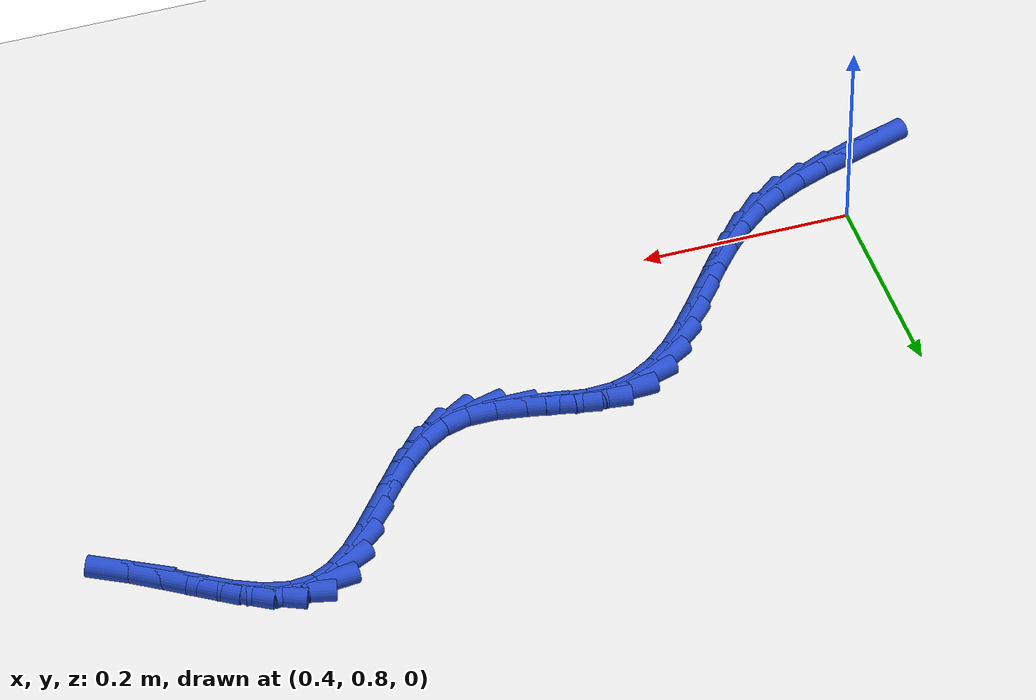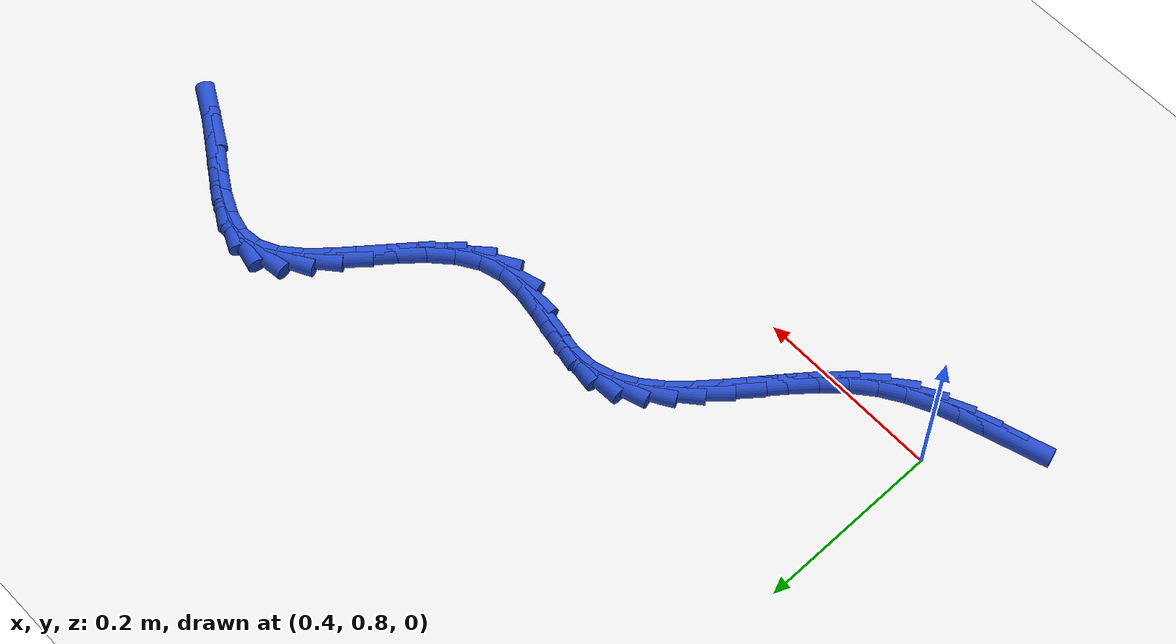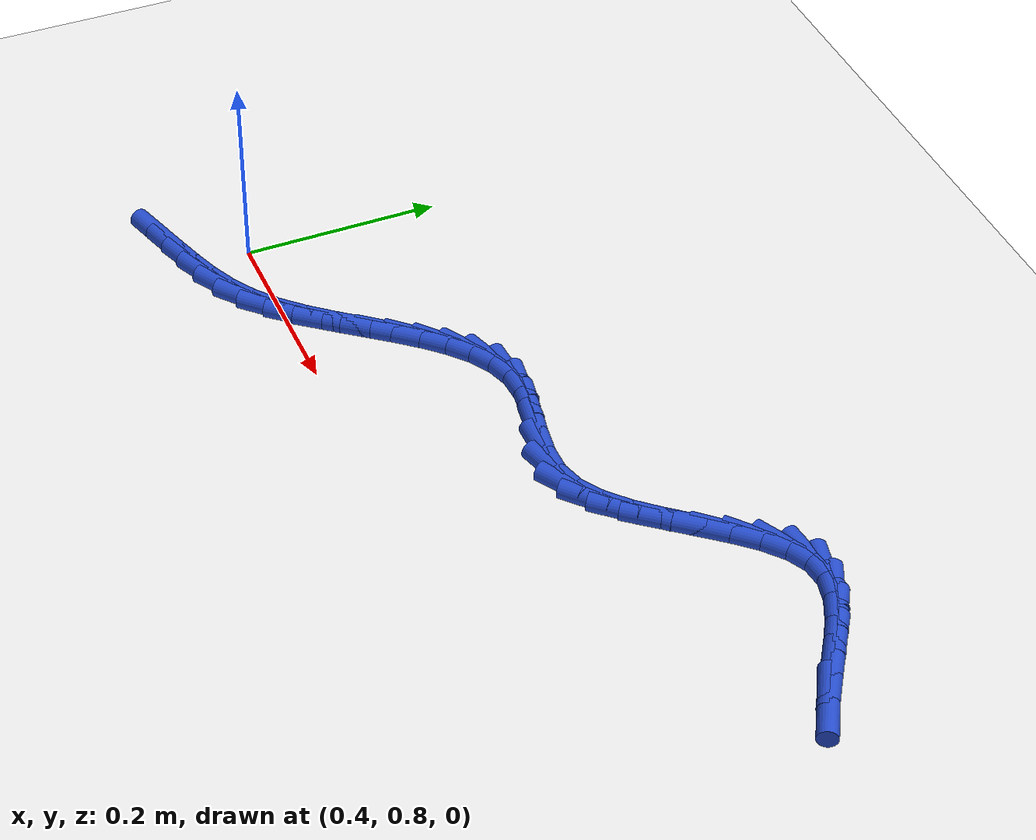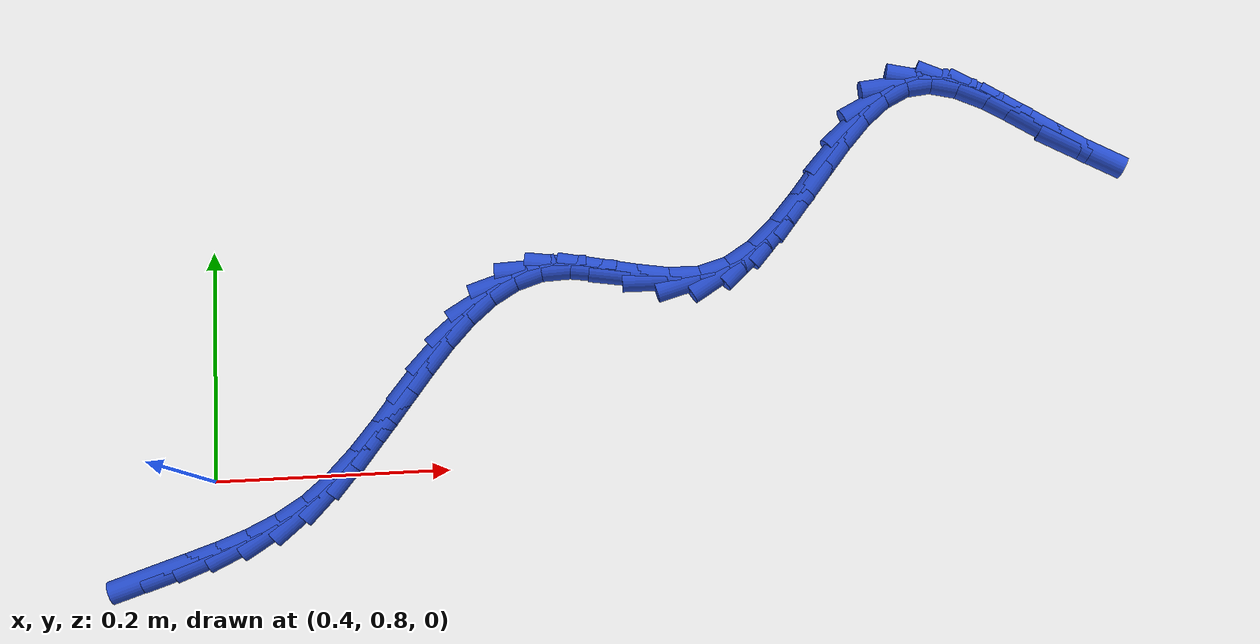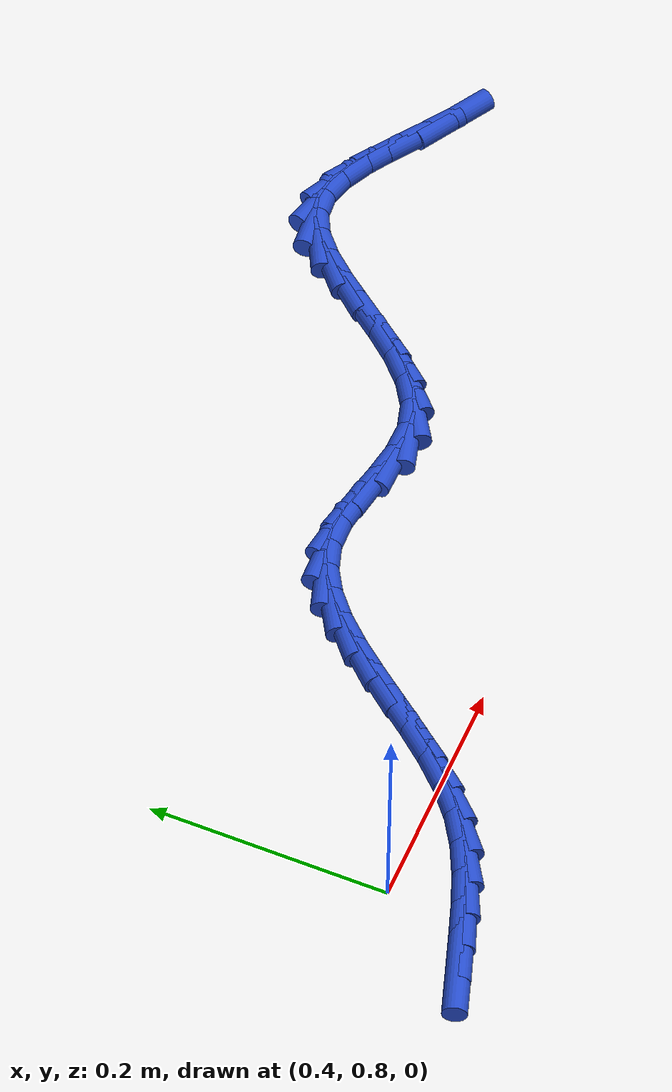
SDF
<sdf version="1.6">
 <world name="default">
  <model name="ground_plane">
   <static>1</static>
   <link name="link">
    <collision name="collision">
     <geometry><plane><normal>0 0 1</normal><size>100 100</size></plane></geometry>
     <surface><friction><ode><mu>100</mu><mu2>50</mu2></ode></friction></surface>
    </collision>
    <visual name="visual">
     <cast_shadows>0</cast_shadows>
     <geometry><plane><normal>0 0 1</normal><size>100 100</size></plane></geometry>
     <material>
      <script><uri>file://media/materials/scripts/gazebo.material</uri><name>Gazebo/WhiteGlow</name></script>
     </material>
    </visual>
   </link>
  </model>
  <model name="line">
   <link name="link_30">
    <pose>0.3522405422709018 0.7227646637422352 0.01 0 1.57 0.3036182680935461</pose>
    <collision name="collision">
     <geometry><cylinder><radius>0.01</radius><length>0.08</length></cylinder></geometry>
    </collision>
    <visual name="visual">
     <material>
      <script><name>Gazebo/Blue</name><uri>file://media/materials/scripts/gazebo.material</uri></script>
     </material>
     <geometry><cylinder><radius>0.01</radius><length>0.08</length></cylinder></geometry>
    </visual>
   </link>
   <link name="link_31">
    <pose>0.37883512808935776 0.7310968859165338 0.01 0 1.57 0.312417065026623</pose>
    <collision name="collision">
     <geometry><cylinder><radius>0.01</radius><length>0.08</length></cylinder></geometry>
    </collision>
    <visual name="visual">
     <material>
      <script><name>Gazebo/Blue</name><uri>file://media/materials/scripts/gazebo.material</uri></script>
     </material>
     <geometry><cylinder><radius>0.01</radius><length>0.08</length></cylinder></geometry>
    </visual>
   </link>
   <link name="link_32">
    <pose>0.4054707446708365 0.7397000476966767 0.01 0 1.57 0.35656774255827295</pose>
    <collision name="collision">
     <geometry><cylinder><radius>0.01</radius><length>0.08</length></cylinder></geometry>
    </collision>
    <visual name="visual">
     <material>
      <script><name>Gazebo/Blue</name><uri>file://media/materials/scripts/gazebo.material</uri></script>
     </material>
     <geometry><cylinder><radius>0.01</radius><length>0.08</length></cylinder></geometry>
    </visual>
   </link>
   <link name="link_33">
    <pose>0.4316800293985362 0.7494627272744537 0.01 0 1.57 0.43652444065668683</pose>
    <collision name="collision">
     <geometry><cylinder><radius>0.01</radius><length>0.08</length></cylinder></geometry>
    </collision>
    <visual name="visual">
     <material>
      <script><name>Gazebo/Blue</name><uri>file://media/materials/scripts/gazebo.material</uri></script>
     </material>
     <geometry><cylinder><radius>0.01</radius><length>0.08</length></cylinder></geometry>
    </visual>
   </link>
   <link name="link_34">
    <pose>0.4569956196556561 0.761273502841655 0.01 0 1.57 0.5518426479296237</pose>
    <collision name="collision">
     <geometry><cylinder><radius>0.01</radius><length>0.08</length></cylinder></geometry>
    </collision>
    <visual name="visual">
     <material>
      <script><name>Gazebo/Blue</name><uri>file://media/materials/scripts/gazebo.material</uri></script>
     </material>
     <geometry><cylinder><radius>0.01</radius><length>0.08</length></cylinder></geometry>
    </visual>
   </link>
   <link name="link_35">
    <pose>0.48095015282539455 0.7760209525900705 0.01 0 1.57 0.6901159250711582</pose>
    <collision name="collision">
     <geometry><cylinder><radius>0.01</radius><length>0.08</length></cylinder></geometry>
    </collision>
    <visual name="visual">
     <material>
      <script><name>Gazebo/Blue</name><uri>file://media/materials/scripts/gazebo.material</uri></script>
     </material>
     <geometry><cylinder><radius>0.01</radius><length>0.08</length></cylinder></geometry>
    </visual>
   </link>
   <link name="link_36">
    <pose>0.5031778902909975 0.7943706392566041 0.01 0 1.57 0.8005125224158287</pose>
    <collision name="collision">
     <geometry><cylinder><radius>0.01</radius><length>0.08</length></cylinder></geometry>
    </collision>
    <visual name="visual">
     <material>
      <script><name>Gazebo/Blue</name><uri>file://media/materials/scripts/gazebo.material</uri></script>
     </material>
     <geometry><cylinder><radius>0.01</radius><length>0.08</length></cylinder></geometry>
    </visual>
   </link>
   <link name="link_37">
    <pose>0.523891112528178 0.8157196536544086 0.01 0 1.57 0.8710023529055432</pose>
    <collision name="collision">
     <geometry><cylinder><radius>0.01</radius><length>0.08</length></cylinder></geometry>
    </collision>
    <visual name="visual">
     <material>
      <script><name>Gazebo/Blue</name><uri>file://media/materials/scripts/gazebo.material</uri></script>
     </material>
     <geometry><cylinder><radius>0.01</radius><length>0.08</length></cylinder></geometry>
    </visual>
   </link>
   <link name="link_38">
    <pose>0.5435061822806708 0.8390172248728707 0.01 0 1.57 0.9067907898642227</pose>
    <collision name="collision">
     <geometry><cylinder><radius>0.01</radius><length>0.08</length></cylinder></geometry>
    </collision>
    <visual name="visual">
     <material>
      <script><name>Gazebo/Blue</name><uri>file://media/materials/scripts/gazebo.material</uri></script>
     </material>
     <geometry><cylinder><radius>0.01</radius><length>0.08</length></cylinder></geometry>
    </visual>
   </link>
   <link name="link_39">
    <pose>0.5624396948482869 0.8632120716534369 0.01 0 1.57 0.9105280704576324</pose>
    <collision name="collision">
     <geometry><cylinder><radius>0.01</radius><length>0.08</length></cylinder></geometry>
    </collision>
    <visual name="visual">
     <material>
      <script><name>Gazebo/Blue</name><uri>file://media/materials/scripts/gazebo.material</uri></script>
     </material>
     <geometry><cylinder><radius>0.01</radius><length>0.08</length></cylinder></geometry>
    </visual>
   </link>
   <link name="link_40">
    <pose>0.581108245530838 0.887252912737553 0.01 0 1.57 0.8814954206568492</pose>
    <collision name="collision">
     <geometry><cylinder><radius>0.01</radius><length>0.08</length></cylinder></geometry>
    </collision>
    <visual name="visual">
     <material>
      <script><name>Gazebo/Blue</name><uri>file://media/materials/scripts/gazebo.material</uri></script>
     </material>
     <geometry><cylinder><radius>0.01</radius><length>0.08</length></cylinder></geometry>
    </visual>
   </link>
   <link name="link_41">
    <pose>0.5999284296281353 0.9100884668666653 0.01 0 1.57 0.8151779632568479</pose>
    <collision name="collision">
     <geometry><cylinder><radius>0.01</radius><length>0.08</length></cylinder></geometry>
    </collision>
    <visual name="visual">
     <material>
      <script><name>Gazebo/Blue</name><uri>file://media/materials/scripts/gazebo.material</uri></script>
     </material>
     <geometry><cylinder><radius>0.01</radius><length>0.08</length></cylinder></geometry>
    </visual>
   </link>
   <link name="link_42">
    <pose>0.61931684243999 0.9306674527822195 0.01 0 1.57 0.703178516138689</pose>
    <collision name="collision">
     <geometry><cylinder><radius>0.01</radius><length>0.08</length></cylinder></geometry>
    </collision>
    <visual name="visual">
     <material>
      <script><name>Gazebo/Blue</name><uri>file://media/materials/scripts/gazebo.material</uri></script>
     </material>
     <geometry><cylinder><radius>0.01</radius><length>0.08</length></cylinder></geometry>
    </visual>
   </link>
   <link name="link_43">
    <pose>0.6396900792662135 0.947938589225662 0.01 0 1.57 0.5352441282044931</pose>
    <collision name="collision">
     <geometry><cylinder><radius>0.01</radius><length>0.08</length></cylinder></geometry>
    </collision>
    <visual name="visual">
     <material>
      <script><name>Gazebo/Blue</name><uri>file://media/materials/scripts/gazebo.material</uri></script>
     </material>
     <geometry><cylinder><radius>0.01</radius><length>0.08</length></cylinder></geometry>
    </visual>
   </link>
   <link name="link_44">
    <pose>0.6614647354066171 0.9608505949384388 0.01 0 1.57 0.30785396486006</pose>
    <collision name="collision">
     <geometry><cylinder><radius>0.01</radius><length>0.08</length></cylinder></geometry>
    </collision>
    <visual name="visual">
     <material>
      <script><name>Gazebo/Blue</name><uri>file://media/materials/scripts/gazebo.material</uri></script>
     </material>
     <geometry><cylinder><radius>0.01</radius><length>0.08</length></cylinder></geometry>
    </visual>
   </link>
   <link name="link_45">
    <pose>0.6850574061610122 0.9683521886619961 0.01 0 1.57 0.04581799291284897</pose>
    <collision name="collision">
     <geometry><cylinder><radius>0.01</radius><length>0.08</length></cylinder></geometry>
    </collision>
    <visual name="visual">
     <material>
      <script><name>Gazebo/Blue</name><uri>file://media/materials/scripts/gazebo.material</uri></script>
     </material>
     <geometry><cylinder><radius>0.01</radius><length>0.08</length></cylinder></geometry>
    </visual>
   </link>
   <link name="link_46">
    <pose>0.7108379055784364 0.9695342266636289 0.01 0 1.57 -0.13747005656121272</pose>
    <collision name="collision">
     <geometry><cylinder><radius>0.01</radius><length>0.08</length></cylinder></geometry>
    </collision>
    <visual name="visual">
     <material>
      <script><name>Gazebo/Blue</name><uri>file://media/materials/scripts/gazebo.material</uri></script>
     </material>
     <geometry><cylinder><radius>0.01</radius><length>0.08</length></cylinder></geometry>
    </visual>
   </link>
   <link name="link_47">
    <pose>0.7384428450798773 0.9657152869105369 0.01 0 1.57 -0.19862703624959369</pose>
    <collision name="collision">
     <geometry><cylinder><radius>0.01</radius><length>0.08</length></cylinder></geometry>
    </collision>
    <visual name="visual">
     <material>
      <script><name>Gazebo/Blue</name><uri>file://media/materials/scripts/gazebo.material</uri></script>
     </material>
     <geometry><cylinder><radius>0.01</radius><length>0.08</length></cylinder></geometry>
    </visual>
   </link>
   <link name="link_48">
    <pose>0.7669269292275487 0.9599819804988537 0.01 0 1.57 -0.1575598486067952</pose>
    <collision name="collision">
     <geometry><cylinder><radius>0.01</radius><length>0.08</length></cylinder></geometry>
    </collision>
    <visual name="visual">
     <material>
      <script><name>Gazebo/Blue</name><uri>file://media/materials/scripts/gazebo.material</uri></script>
     </material>
     <geometry><cylinder><radius>0.01</radius><length>0.08</length></cylinder></geometry>
    </visual>
   </link>
   <link name="link_49">
    <pose>0.7953288480379348 0.9554695762213317 0.01 0 1.57 -0.005710546083951805</pose>
    <collision name="collision">
     <geometry><cylinder><radius>0.01</radius><length>0.08</length></cylinder></geometry>
    </collision>
    <visual name="visual">
     <material>
      <script><name>Gazebo/Blue</name><uri>file://media/materials/scripts/gazebo.material</uri></script>
     </material>
     <geometry><cylinder><radius>0.01</radius><length>0.08</length></cylinder></geometry>
    </visual>
   </link>
   <link name="link_50">
    <pose>0.8226872915275207 0.9553133428707214 0.01 0 1.57 0.27299837163486995</pose>
    <collision name="collision">
     <geometry><cylinder><radius>0.01</radius><length>0.08</length></cylinder></geometry>
    </collision>
    <visual name="visual">
     <material>
      <script><name>Gazebo/Blue</name><uri>file://media/materials/scripts/gazebo.material</uri></script>
     </material>
     <geometry><cylinder><radius>0.01</radius><length>0.08</length></cylinder></geometry>
    </visual>
   </link>
   <link name="link_51">
    <pose>0.8481011803756251 0.9624289486017513 0.01 0 1.57 0.5540703461499829</pose>
    <collision name="collision">
     <geometry><cylinder><radius>0.01</radius><length>0.08</length></cylinder></geometry>
    </collision>
    <visual name="visual">
     <material>
      <script><name>Gazebo/Blue</name><uri>file://media/materials/scripts/gazebo.material</uri></script>
     </material>
     <geometry><cylinder><radius>0.01</radius><length>0.08</length></cylinder></geometry>
    </visual>
   </link>
   <link name="link_52">
    <pose>0.87145253367265 0.9768768894256584 0.01 0 1.57 0.7403345087043823</pose>
    <collision name="collision">
     <geometry><cylinder><radius>0.01</radius><length>0.08</length></cylinder></geometry>
    </collision>
    <visual name="visual">
     <material>
      <script><name>Gazebo/Blue</name><uri>file://media/materials/scripts/gazebo.material</uri></script>
     </material>
     <geometry><cylinder><radius>0.01</radius><length>0.08</length></cylinder></geometry>
    </visual>
   </link>
   <link name="link_53">
    <pose>0.8931709753527252 0.9967210973544144 0.01 0 1.57 0.8478213494684496</pose>
    <collision name="collision">
     <geometry><cylinder><radius>0.01</radius><length>0.08</length></cylinder></geometry>
    </collision>
    <visual name="visual">
     <material>
      <script><name>Gazebo/Blue</name><uri>file://media/materials/scripts/gazebo.material</uri></script>
     </material>
     <geometry><cylinder><radius>0.01</radius><length>0.08</length></cylinder></geometry>
    </visual>
   </link>
   <link name="link_54">
    <pose>0.9136973639812348 1.0199845430013375 0.01 0 1.57 0.8957920718937642</pose>
    <collision name="collision">
     <geometry><cylinder><radius>0.01</radius><length>0.08</length></cylinder></geometry>
    </collision>
    <visual name="visual">
     <material>
      <script><name>Gazebo/Blue</name><uri>file://media/materials/scripts/gazebo.material</uri></script>
     </material>
     <geometry><cylinder><radius>0.01</radius><length>0.08</length></cylinder></geometry>
    </visual>
   </link>
   <link name="link_55">
    <pose>0.9334725581235639 1.0446901969797457 0.01 0 1.57 0.8928298519454283</pose>
    <collision name="collision">
     <geometry><cylinder><radius>0.01</radius><length>0.08</length></cylinder></geometry>
    </collision>
    <visual name="visual">
     <material>
      <script><name>Gazebo/Blue</name><uri>file://media/materials/scripts/gazebo.material</uri></script>
     </material>
     <geometry><cylinder><radius>0.01</radius><length>0.08</length></cylinder></geometry>
    </visual>
   </link>
   <link name="link_56">
    <pose>0.9529374163450962 1.0688610299029566 0.01 0 1.57 0.8353779203455667</pose>
    <collision name="collision">
     <geometry><cylinder><radius>0.01</radius><length>0.08</length></cylinder></geometry>
    </collision>
    <visual name="visual">
     <material>
      <script><name>Gazebo/Blue</name><uri>file://media/materials/scripts/gazebo.material</uri></script>
     </material>
     <geometry><cylinder><radius>0.01</radius><length>0.08</length></cylinder></geometry>
    </visual>
   </link>
   <link name="link_57">
    <pose>0.9725327972112167 1.090520012384289 0.01 0 1.57 0.7053097656562785</pose>
    <collision name="collision">
     <geometry><cylinder><radius>0.01</radius><length>0.08</length></cylinder></geometry>
    </collision>
    <visual name="visual">
     <material>
      <script><name>Gazebo/Blue</name><uri>file://media/materials/scripts/gazebo.material</uri></script>
     </material>
     <geometry><cylinder><radius>0.01</radius><length>0.08</length></cylinder></geometry>
    </visual>
   </link>
   <link name="link_58">
    <pose>0.9926995592873094 1.1076901150370606 0.01 0 1.57 0.46797052827440594</pose>
    <collision name="collision">
     <geometry><cylinder><radius>0.01</radius><length>0.08</length></cylinder></geometry>
    </collision>
    <visual name="visual">
     <material>
      <script><name>Gazebo/Blue</name><uri>file://media/materials/scripts/gazebo.material</uri></script>
     </material>
     <geometry><cylinder><radius>0.01</radius><length>0.08</length></cylinder></geometry>
    </visual>
   </link>
   <link name="link_59">
    <pose>1.013878561138759 1.118394308474589 0.01 0 1.57 0.10485933749303544</pose>
    <collision name="collision">
     <geometry><cylinder><radius>0.01</radius><length>0.08</length></cylinder></geometry>
    </collision>
    <visual name="visual">
     <material>
      <script><name>Gazebo/Blue</name><uri>file://media/materials/scripts/gazebo.material</uri></script>
     </material>
     <geometry><cylinder><radius>0.01</radius><length>0.08</length></cylinder></geometry>
    </visual>
   </link>
   <link name="link_60">
    <pose>1.0364882300027924 1.1207738712512638 0.01 0 1.57 -0.23254969838197154</pose>
    <collision name="collision">
     <geometry><cylinder><radius>0.01</radius><length>0.08</length></cylinder></geometry>
    </collision>
    <visual name="visual">
     <material>
      <script><name>Gazebo/Blue</name><uri>file://media/materials/scripts/gazebo.material</uri></script>
     </material>
     <geometry><cylinder><radius>0.01</radius><length>0.08</length></cylinder></geometry>
    </visual>
   </link>
   <link name="link_61">
    <pose>1.0605477566006232 1.1150757463689296 0.01 0 1.57 -0.4354573228581081</pose>
    <collision name="collision">
     <geometry><cylinder><radius>0.01</radius><length>0.08</length></cylinder></geometry>
    </collision>
    <visual name="visual">
     <material>
      <script><name>Gazebo/Blue</name><uri>file://media/materials/scripts/gazebo.material</uri></script>
     </material>
     <geometry><cylinder><radius>0.01</radius><length>0.08</length></cylinder></geometry>
    </visual>
   </link>
   <link name="link_62">
    <pose>1.0857328324228177 1.1033585701207203 0.01 0 1.57 -0.5413652199853947</pose>
    <collision name="collision">
     <geometry><cylinder><radius>0.01</radius><length>0.08</length></cylinder></geometry>
    </collision>
    <visual name="visual">
     <material>
      <script><name>Gazebo/Blue</name><uri>file://media/materials/scripts/gazebo.material</uri></script>
     </material>
     <geometry><cylinder><radius>0.01</radius><length>0.08</length></cylinder></geometry>
    </visual>
   </link>
   <link name="link_63">
    <pose>1.111707944161751 1.0877400754611395 0.01 0 1.57 -0.582279019685072</pose>
    <collision name="collision">
     <geometry><cylinder><radius>0.01</radius><length>0.08</length></cylinder></geometry>
    </collision>
    <visual name="visual">
     <material>
      <script><name>Gazebo/Blue</name><uri>file://media/materials/scripts/gazebo.material</uri></script>
     </material>
     <geometry><cylinder><radius>0.01</radius><length>0.08</length></cylinder></geometry>
    </visual>
   </link>
   <link name="link_64">
    <pose>1.1381375785097976 1.0703379953446925 0.01 0 1.57 -0.5713627301844789</pose>
    <collision name="collision">
     <geometry><cylinder><radius>0.01</radius><length>0.08</length></cylinder></geometry>
    </collision>
    <visual name="visual">
     <material>
      <script><name>Gazebo/Blue</name><uri>file://media/materials/scripts/gazebo.material</uri></script>
     </material>
     <geometry><cylinder><radius>0.01</radius><length>0.08</length></cylinder></geometry>
    </visual>
   </link>
   <link name="link_65">
    <pose>1.1646862221593333 1.0532700627258824 0.01 0 1.57 -0.5067236571244669</pose>
    <collision name="collision">
     <geometry><cylinder><radius>0.01</radius><length>0.08</length></cylinder></geometry>
    </collision>
    <visual name="visual">
     <material>
      <script><name>Gazebo/Blue</name><uri>file://media/materials/scripts/gazebo.material</uri></script>
     </material>
     <geometry><cylinder><radius>0.01</radius><length>0.08</length></cylinder></geometry>
    </visual>
   </link>
  </model>
 </world>
</sdf>
